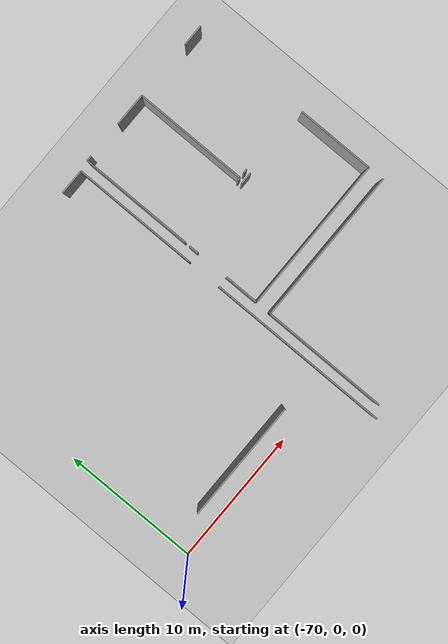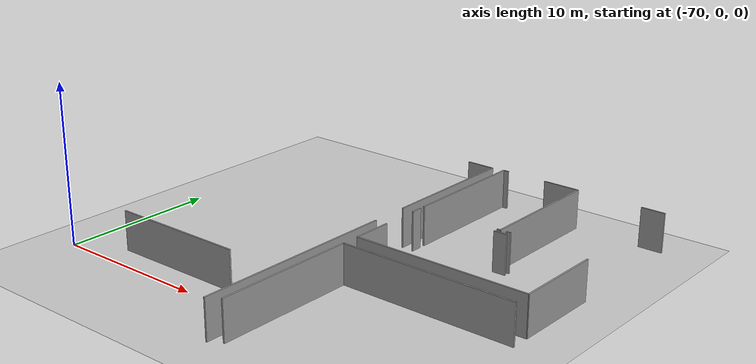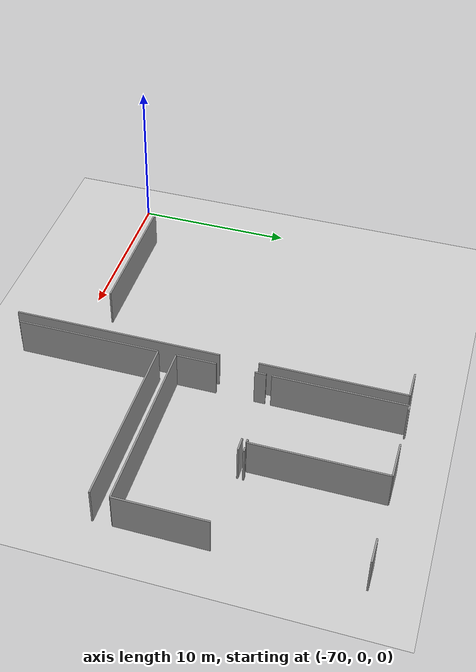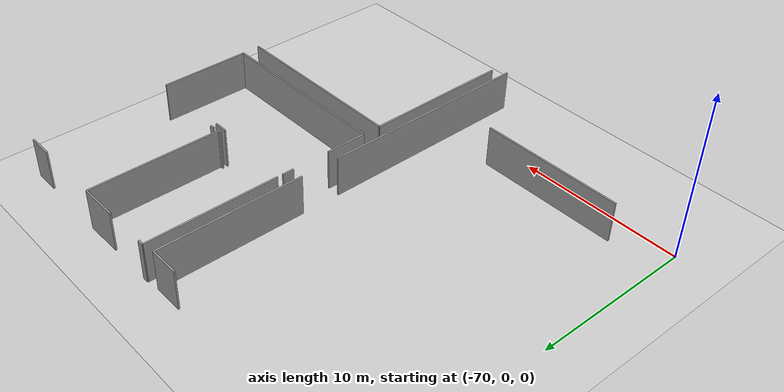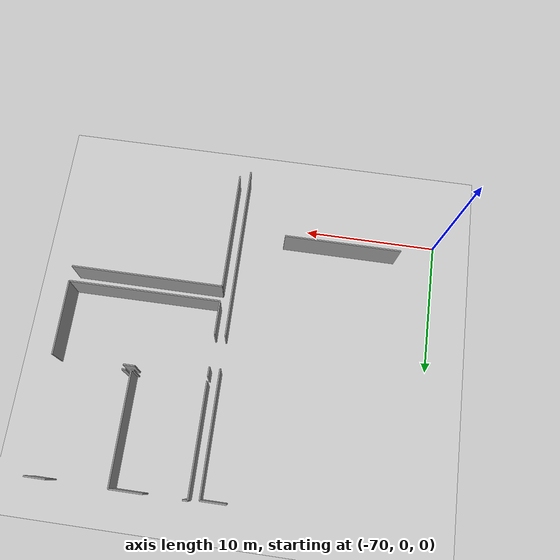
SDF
<sdf version="1.6">
 <world name="default">
  <model name="ground_plane">
   <static>1</static>
   <link name="link">
    <collision name="collision">
     <geometry><plane><normal>0 0 1</normal><size>100 100</size></plane></geometry>
     <surface><friction><ode><mu>100</mu><mu2>50</mu2></ode></friction></surface>
    </collision>
    <visual name="visual">
     <cast_shadows>0</cast_shadows>
     <geometry><plane><normal>0 0 1</normal><size>100 100</size></plane></geometry>
     <material>
      <script><uri>file://media/materials/scripts/gazebo.material</uri><name>Gazebo/Grey</name></script>
     </material>
    </visual>
   </link>
  </model>
  <model name="0510035738_A_40_1_101">
   <static>1</static>
   <link name="Wall_4">
    <collision name="Wall_4_Collision">
     <geometry><box><size>1.83069441446 0.1 2.5</size></box></geometry>
     <pose>0.915347207232 0 1.25 0 0 0</pose>
    </collision>
    <visual name="Wall_4_Visual">
     <pose>0.915347207232 0 1.25 0 0 0</pose>
     <geometry><box><size>1.83069441446 0.1 2.5</size></box></geometry>
     <material>
      <script><uri>file://media/materials/scripts/gazebo.material</uri><name>Gazebo/Grey</name></script>
      <ambient>1 1 1 1</ambient>
     </material>
    </visual>
    <pose>13.972599261 -0.120370252803 0 0 0 0.0</pose>
   </link>
   <link name="Wall_5">
    <collision name="Wall_5_Collision">
     <geometry><box><size>9.09633429409 0.1 2.5</size></box></geometry>
     <pose>4.54816714705 0 1.25 0 0 0</pose>
    </collision>
    <visual name="Wall_5_Visual">
     <pose>4.54816714705 0 1.25 0 0 0</pose>
     <geometry><box><size>9.09633429409 0.1 2.5</size></box></geometry>
     <material>
      <script><uri>file://media/materials/scripts/gazebo.material</uri><name>Gazebo/Grey</name></script>
      <ambient>1 1 1 1</ambient>
     </material>
    </visual>
    <pose>15.8032936755 -0.120370252803 0 0 0 -1.57079632679</pose>
   </link>
   <link name="Wall_6">
    <collision name="Wall_6_Collision">
     <geometry><box><size>13.2270147415 0.1 2.5</size></box></geometry>
     <pose>6.61350737077 0 1.25 0 0 0</pose>
    </collision>
    <visual name="Wall_6_Visual">
     <pose>6.61350737077 0 1.25 0 0 0</pose>
     <geometry><box><size>13.2270147415 0.1 2.5</size></box></geometry>
     <material>
      <script><uri>file://media/materials/scripts/gazebo.material</uri><name>Gazebo/Grey</name></script>
      <ambient>1 1 1 1</ambient>
     </material>
    </visual>
    <pose>15.8032936755 -11.6510278451 0 0 0 -1.57079632679</pose>
   </link>
   <link name="Wall_9">
    <collision name="Wall_9_Collision">
     <geometry><box><size>8.73090645911 0.1 2.5</size></box></geometry>
     <pose>4.36545322955 0 1.25 0 0 0</pose>
    </collision>
    <visual name="Wall_9_Visual">
     <pose>4.36545322955 0 1.25 0 0 0</pose>
     <geometry><box><size>8.73090645911 0.1 2.5</size></box></geometry>
     <material>
      <script><uri>file://media/materials/scripts/gazebo.material</uri><name>Gazebo/Grey</name></script>
      <ambient>1 1 1 1</ambient>
     </material>
    </visual>
    <pose>12.504539279 -19.9616542022 0 0 0 3.14159265359</pose>
   </link>
   <link name="Wall_11">
    <collision name="Wall_11_Collision">
     <geometry><box><size>8.20244549691 0.1 2.5</size></box></geometry>
     <pose>4.10122274845 0 1.25 0 0 0</pose>
    </collision>
    <visual name="Wall_11_Visual">
     <pose>4.10122274845 0 1.25 0 0 0</pose>
     <geometry><box><size>8.20244549691 0.1 2.5</size></box></geometry>
     <material>
      <script><uri>file://media/materials/scripts/gazebo.material</uri><name>Gazebo/Grey</name></script>
      <ambient>1 1 1 1</ambient>
     </material>
    </visual>
    <pose>16.591033178 -8.20244549691 0 0 0 1.57079632679</pose>
   </link>
   <link name="Wall_12">
    <collision name="Wall_12_Collision">
     <geometry><box><size>0.361110758409 0.1 2.5</size></box></geometry>
     <pose>0.180555379204 0 1.25 0 0 0</pose>
    </collision>
    <visual name="Wall_12_Visual">
     <pose>0.180555379204 0 1.25 0 0 0</pose>
     <geometry><box><size>0.361110758409 0.1 2.5</size></box></geometry>
     <material>
      <script><uri>file://media/materials/scripts/gazebo.material</uri><name>Gazebo/Grey</name></script>
      <ambient>1 1 1 1</ambient>
     </material>
    </visual>
    <pose>16.591033178 -0.0 0 0 0 0.0</pose>
   </link>
   <link name="Wall_13">
    <collision name="Wall_13_Collision">
     <geometry><box><size>2.37363028048 0.1 2.5</size></box></geometry>
     <pose>1.18681514024 0 1.25 0 0 0</pose>
    </collision>
    <visual name="Wall_13_Visual">
     <pose>1.18681514024 0 1.25 0 0 0</pose>
     <geometry><box><size>2.37363028048 0.1 2.5</size></box></geometry>
     <material>
      <script><uri>file://media/materials/scripts/gazebo.material</uri><name>Gazebo/Grey</name></script>
      <ambient>1 1 1 1</ambient>
     </material>
    </visual>
    <pose>19.6538720368 -0.0 0 0 0 0.0</pose>
   </link>
   <link name="Wall_14">
    <collision name="Wall_14_Collision">
     <geometry><box><size>8.22428482548 0.1 2.5</size></box></geometry>
     <pose>4.11214241274 0 1.25 0 0 0</pose>
    </collision>
    <visual name="Wall_14_Visual">
     <pose>4.11214241274 0 1.25 0 0 0</pose>
     <geometry><box><size>8.22428482548 0.1 2.5</size></box></geometry>
     <material>
      <script><uri>file://media/materials/scripts/gazebo.material</uri><name>Gazebo/Grey</name></script>
      <ambient>1 1 1 1</ambient>
     </material>
    </visual>
    <pose>22.0275023173 -0.0 0 0 0 -1.57079632679</pose>
   </link>
   <link name="Wall_15">
    <collision name="Wall_15_Collision">
     <geometry><box><size>0.217123557271 0.1 2.5</size></box></geometry>
     <pose>0.108561778636 0 1.25 0 0 0</pose>
    </collision>
    <visual name="Wall_15_Visual">
     <pose>0.108561778636 0 1.25 0 0 0</pose>
     <geometry><box><size>0.217123557271 0.1 2.5</size></box></geometry>
     <material>
      <script><uri>file://media/materials/scripts/gazebo.material</uri><name>Gazebo/Grey</name></script>
      <ambient>1 1 1 1</ambient>
     </material>
    </visual>
    <pose>22.0275023173 -8.22428482548 0 0 0 3.14159265359</pose>
   </link>
   <link name="Wall_16">
    <collision name="Wall_16_Collision">
     <geometry><box><size>1.52773721701 0.1 2.5</size></box></geometry>
     <pose>0.763868608505 0 1.25 0 0 0</pose>
    </collision>
    <visual name="Wall_16_Visual">
     <pose>0.763868608505 0 1.25 0 0 0</pose>
     <geometry><box><size>1.52773721701 0.1 2.5</size></box></geometry>
     <material>
      <script><uri>file://media/materials/scripts/gazebo.material</uri><name>Gazebo/Grey</name></script>
      <ambient>1 1 1 1</ambient>
     </material>
    </visual>
    <pose>26.3455946773 -0.0208235458435 0 0 0 0.0</pose>
   </link>
   <link name="Wall_18">
    <collision name="Wall_18_Collision">
     <geometry><box><size>0.291806019602 0.1 2.5</size></box></geometry>
     <pose>0.145903009801 0 1.25 0 0 0</pose>
    </collision>
    <visual name="Wall_18_Visual">
     <pose>0.145903009801 0 1.25 0 0 0</pose>
     <geometry><box><size>0.291806019602 0.1 2.5</size></box></geometry>
     <material>
      <script><uri>file://media/materials/scripts/gazebo.material</uri><name>Gazebo/Grey</name></script>
      <ambient>1 1 1 1</ambient>
     </material>
    </visual>
    <pose>22.7106161992 -8.19381134375 0 0 0 -3.09806615527</pose>
   </link>
   <link name="Wall_19">
    <collision name="Wall_19_Collision">
     <geometry><box><size>2.54098048427 0.1 2.5</size></box></geometry>
     <pose>1.27049024214 0 1.25 0 0 0</pose>
    </collision>
    <visual name="Wall_19_Visual">
     <pose>1.27049024214 0 1.25 0 0 0</pose>
     <geometry><box><size>2.54098048427 0.1 2.5</size></box></geometry>
     <material>
      <script><uri>file://media/materials/scripts/gazebo.material</uri><name>Gazebo/Grey</name></script>
      <ambient>1 1 1 1</ambient>
     </material>
    </visual>
    <pose>16.5834148076 -14.1772794799 0 0 0 1.57079632679</pose>
   </link>
   <link name="Wall_20">
    <collision name="Wall_20_Collision">
     <geometry><box><size>0.708000558681 0.1 2.5</size></box></geometry>
     <pose>0.35400027934 0 1.25 0 0 0</pose>
    </collision>
    <visual name="Wall_20_Visual">
     <pose>0.35400027934 0 1.25 0 0 0</pose>
     <geometry><box><size>0.708000558681 0.1 2.5</size></box></geometry>
     <material>
      <script><uri>file://media/materials/scripts/gazebo.material</uri><name>Gazebo/Grey</name></script>
      <ambient>1 1 1 1</ambient>
     </material>
    </visual>
    <pose>16.5834148076 -9.25174905088 0 0 0 1.57079632679</pose>
   </link>
   <link name="Wall_21">
    <collision name="Wall_21_Collision">
     <geometry><box><size>0.859098238887 0.1 2.5</size></box></geometry>
     <pose>0.429549119443 0 1.25 0 0 0</pose>
    </collision>
    <visual name="Wall_21_Visual">
     <pose>0.429549119443 0 1.25 0 0 0</pose>
     <geometry><box><size>0.859098238887 0.1 2.5</size></box></geometry>
     <material>
      <script><uri>file://media/materials/scripts/gazebo.material</uri><name>Gazebo/Grey</name></script>
      <ambient>1 1 1 1</ambient>
     </material>
    </visual>
    <pose>21.8228220984 -8.5437484922 0 0 0 0.0</pose>
   </link>
   <link name="Wall_22">
    <collision name="Wall_22_Collision">
     <geometry><box><size>5.60737458258 0.1 2.5</size></box></geometry>
     <pose>2.80368729129 0 1.25 0 0 0</pose>
    </collision>
    <visual name="Wall_22_Visual">
     <pose>2.80368729129 0 1.25 0 0 0</pose>
     <geometry><box><size>5.60737458258 0.1 2.5</size></box></geometry>
     <material>
      <script><uri>file://media/materials/scripts/gazebo.material</uri><name>Gazebo/Grey</name></script>
      <ambient>1 1 1 1</ambient>
     </material>
    </visual>
    <pose>27.8372716076 -8.5437484922 0 0 0 -1.57079632679</pose>
   </link>
   <link name="Wall_23">
    <collision name="Wall_23_Collision">
     <geometry><box><size>11.2538871966 0.1 2.5</size></box></geometry>
     <pose>5.62694359829 0 1.25 0 0 0</pose>
    </collision>
    <visual name="Wall_23_Visual">
     <pose>5.62694359829 0 1.25 0 0 0</pose>
     <geometry><box><size>11.2538871966 0.1 2.5</size></box></geometry>
     <material>
      <script><uri>file://media/materials/scripts/gazebo.material</uri><name>Gazebo/Grey</name></script>
      <ambient>1 1 1 1</ambient>
     </material>
    </visual>
    <pose>27.8372716076 -14.1511230748 0 0 0 -3.13926844079</pose>
   </link>
   <link name="Wall_50">
    <collision name="Wall_50_Collision">
     <geometry><box><size>9.08922381503 0.1 2.5</size></box></geometry>
     <pose>4.54461190751 0 1.25 0 0 0</pose>
    </collision>
    <visual name="Wall_50_Visual">
     <pose>4.54461190751 0 1.25 0 0 0</pose>
     <geometry><box><size>9.08922381503 0.1 2.5</size></box></geometry>
     <material>
      <script><uri>file://media/materials/scripts/gazebo.material</uri><name>Gazebo/Grey</name></script>
      <ambient>1 1 1 1</ambient>
     </material>
    </visual>
    <pose>16.5834148076 -24.4133219904 0 0 0 1.57079632679</pose>
   </link>
   <link name="Wall_51">
    <collision name="Wall_51_Collision">
     <geometry><box><size>11.2962657288 0.1 2.5</size></box></geometry>
     <pose>5.64813286438 0 1.25 0 0 0</pose>
    </collision>
    <visual name="Wall_51_Visual">
     <pose>5.64813286438 0 1.25 0 0 0</pose>
     <geometry><box><size>11.2962657288 0.1 2.5</size></box></geometry>
     <material>
      <script><uri>file://media/materials/scripts/gazebo.material</uri><name>Gazebo/Grey</name></script>
      <ambient>1 1 1 1</ambient>
     </material>
    </visual>
    <pose>16.5834148076 -15.3240981754 0 0 0 0.0</pose>
   </link>
   <pose>-70.75 21.5758173877 0 0 0 0</pose>
  </model>
 </world>
</sdf>
